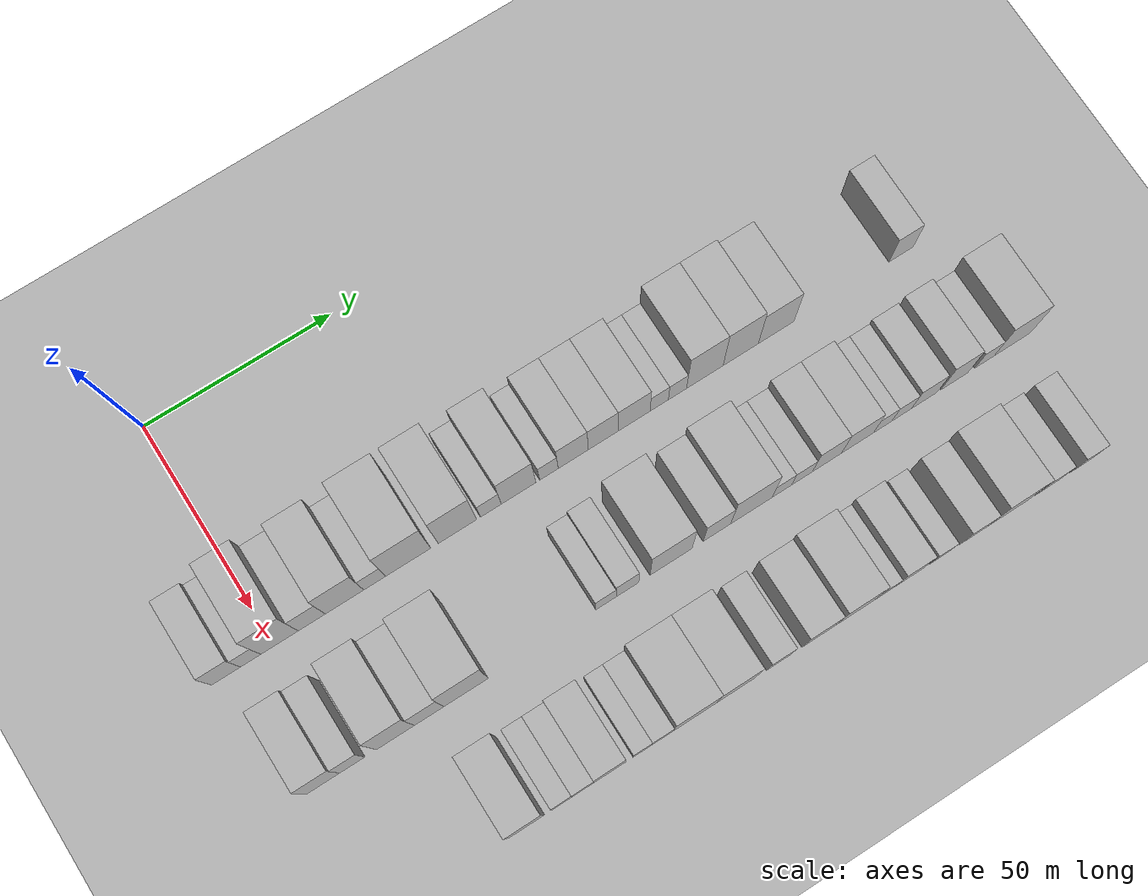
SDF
<sdf version="1.6">
 <world name="default">
  <include><name>ground_plane_1</name><uri>model://HANNAS_ground_plane</uri></include>
  <include>
   <name>ground_plane_2</name>
   <uri>model://HANNAS_ground_plane</uri>
   <pose>100 0 0  0 0 0</pose>
  </include>
  <model name="building_38">
   <static>1</static>
   <pose>50.0000 -12.3546 0 0.000000 0.000000 0.000000</pose>
   <link name="link">
    <pose>0 0 7.50 0 0 0</pose>
    <collision name="collision"><geometry><box><size>20.0000 7.4448 15.0000</size></box></geometry></collision>
    <visual name="visual">
     <cast_shadows>0</cast_shadows>
     <geometry><box><size>20.0000 7.4448 15.0000</size></box></geometry>
     <material>
      <script>
       <uri>model://HANNAS_wall/materials/scripts</uri>
       <uri>model://HANNAS_wall/materials/textures</uri>
       <name>vrc/HANNAS_wall</name>
      </script>
     </material>
    </visual>
   </link>
  </model>
  <model name="building_39">
   <static>1</static>
   <pose>50.0000 -6.0099 0 0.000000 0.000000 0.000000</pose>
   <link name="link">
    <pose>0 0 6.00 0 0 0</pose>
    <collision name="collision"><geometry><box><size>20.0000 5.2446 12.0000</size></box></geometry></collision>
    <visual name="visual">
     <cast_shadows>0</cast_shadows>
     <geometry><box><size>20.0000 5.2446 12.0000</size></box></geometry>
     <material>
      <script>
       <uri>model://HANNAS_wall/materials/scripts</uri>
       <uri>model://HANNAS_wall/materials/textures</uri>
       <name>vrc/HANNAS_wall</name>
      </script>
     </material>
    </visual>
   </link>
  </model>
  <model name="building_40">
   <static>1</static>
   <pose>50.0000 1.4643 0 0.000000 0.000000 0.000000</pose>
   <link name="link">
    <pose>0 0 12.00 0 0 0</pose>
    <collision name="collision"><geometry><box><size>20.0000 9.7036 24.0000</size></box></geometry></collision>
    <visual name="visual">
     <cast_shadows>0</cast_shadows>
     <geometry><box><size>20.0000 9.7036 24.0000</size></box></geometry>
     <material>
      <script>
       <uri>model://HANNAS_wall/materials/scripts</uri>
       <uri>model://HANNAS_wall/materials/textures</uri>
       <name>vrc/HANNAS_wall</name>
      </script>
     </material>
    </visual>
   </link>
  </model>
  <model name="building_41">
   <static>1</static>
   <pose>50.0000 9.8252 0 0.000000 0.000000 0.000000</pose>
   <link name="link">
    <pose>0 0 7.50 0 0 0</pose>
    <collision name="collision"><geometry><box><size>20.0000 7.0182 15.0000</size></box></geometry></collision>
    <visual name="visual">
     <cast_shadows>0</cast_shadows>
     <geometry><box><size>20.0000 7.0182 15.0000</size></box></geometry>
     <material>
      <script>
       <uri>model://HANNAS_wall/materials/scripts</uri>
       <uri>model://HANNAS_wall/materials/textures</uri>
       <name>vrc/HANNAS_wall</name>
      </script>
     </material>
    </visual>
   </link>
  </model>
  <model name="building_42">
   <static>1</static>
   <pose>50.0000 18.3706 0 0.000000 0.000000 0.000000</pose>
   <link name="link">
    <pose>0 0 10.50 0 0 0</pose>
    <collision name="collision"><geometry><box><size>20.0000 10.0727 21.0000</size></box></geometry></collision>
    <visual name="visual">
     <cast_shadows>0</cast_shadows>
     <geometry><box><size>20.0000 10.0727 21.0000</size></box></geometry>
     <material>
      <script>
       <uri>model://HANNAS_wall/materials/scripts</uri>
       <uri>model://HANNAS_wall/materials/textures</uri>
       <name>vrc/HANNAS_wall</name>
      </script>
     </material>
    </visual>
   </link>
  </model>
  <model name="building_43">
   <static>1</static>
   <pose>50.0000 26.2622 0 0.000000 0.000000 0.000000</pose>
   <link name="link">
    <pose>0 0 6.00 0 0 0</pose>
    <collision name="collision"><geometry><box><size>20.0000 5.7104 12.0000</size></box></geometry></collision>
    <visual name="visual">
     <cast_shadows>0</cast_shadows>
     <geometry><box><size>20.0000 5.7104 12.0000</size></box></geometry>
     <material>
      <script>
       <uri>model://HANNAS_wall/materials/scripts</uri>
       <uri>model://HANNAS_wall/materials/textures</uri>
       <name>vrc/HANNAS_wall</name>
      </script>
     </material>
    </visual>
   </link>
  </model>
  <model name="building_44">
   <static>1</static>
   <pose>50.0000 35.0794 0 0.000000 0.000000 0.000000</pose>
   <link name="link">
    <pose>0 0 12.00 0 0 0</pose>
    <collision name="collision"><geometry><box><size>20.0000 11.9240 24.0000</size></box></geometry></collision>
    <visual name="visual">
     <cast_shadows>0</cast_shadows>
     <geometry><box><size>20.0000 11.9240 24.0000</size></box></geometry>
     <material>
      <script>
       <uri>model://HANNAS_wall/materials/scripts</uri>
       <uri>model://HANNAS_wall/materials/textures</uri>
       <name>vrc/HANNAS_wall</name>
      </script>
     </material>
    </visual>
   </link>
  </model>
  <model name="building_45">
   <static>1</static>
   <pose>50.0000 48.1563 0 0.000000 0.000000 0.000000</pose>
   <link name="link">
    <pose>0 0 12.00 0 0 0</pose>
    <collision name="collision"><geometry><box><size>20.0000 10.2297 24.0000</size></box></geometry></collision>
    <visual name="visual">
     <cast_shadows>0</cast_shadows>
     <geometry><box><size>20.0000 10.2297 24.0000</size></box></geometry>
     <material>
      <script>
       <uri>model://HANNAS_wall/materials/scripts</uri>
       <uri>model://HANNAS_wall/materials/textures</uri>
       <name>vrc/HANNAS_wall</name>
      </script>
     </material>
    </visual>
   </link>
  </model>
  <model name="building_46">
   <static>1</static>
   <pose>50.0000 57.0596 0 0.000000 0.000000 0.000000</pose>
   <link name="link">
    <pose>0 0 6.00 0 0 0</pose>
    <collision name="collision"><geometry><box><size>20.0000 5.5768 12.0000</size></box></geometry></collision>
    <visual name="visual">
     <cast_shadows>0</cast_shadows>
     <geometry><box><size>20.0000 5.5768 12.0000</size></box></geometry>
     <material>
      <script>
       <uri>model://HANNAS_wall/materials/scripts</uri>
       <uri>model://HANNAS_wall/materials/textures</uri>
       <name>vrc/HANNAS_wall</name>
      </script>
     </material>
    </visual>
   </link>
  </model>
  <model name="building_47">
   <static>1</static>
   <pose>50.0000 64.5118 0 0.000000 0.000000 0.000000</pose>
   <link name="link">
    <pose>0 0 10.50 0 0 0</pose>
    <collision name="collision"><geometry><box><size>20.0000 9.3276 21.0000</size></box></geometry></collision>
    <visual name="visual">
     <cast_shadows>0</cast_shadows>
     <geometry><box><size>20.0000 9.3276 21.0000</size></box></geometry>
     <material>
      <script>
       <uri>model://HANNAS_wall/materials/scripts</uri>
       <uri>model://HANNAS_wall/materials/textures</uri>
       <name>vrc/HANNAS_wall</name>
      </script>
     </material>
    </visual>
   </link>
  </model>
  <model name="building_48">
   <static>1</static>
   <pose>50.0000 72.6799 0 0.000000 0.000000 0.000000</pose>
   <link name="link">
    <pose>0 0 6.00 0 0 0</pose>
    <collision name="collision"><geometry><box><size>20.0000 5.0088 12.0000</size></box></geometry></collision>
    <visual name="visual">
     <cast_shadows>0</cast_shadows>
     <geometry><box><size>20.0000 5.0088 12.0000</size></box></geometry>
     <material>
      <script>
       <uri>model://HANNAS_wall/materials/scripts</uri>
       <uri>model://HANNAS_wall/materials/textures</uri>
       <name>vrc/HANNAS_wall</name>
      </script>
     </material>
    </visual>
   </link>
  </model>
  <model name="building_49">
   <static>1</static>
   <pose>50.0000 79.2572 0 0.000000 0.000000 0.000000</pose>
   <link name="link">
    <pose>0 0 9.00 0 0 0</pose>
    <collision name="collision"><geometry><box><size>20.0000 8.1458 18.0000</size></box></geometry></collision>
    <visual name="visual">
     <cast_shadows>0</cast_shadows>
     <geometry><box><size>20.0000 8.1458 18.0000</size></box></geometry>
     <material>
      <script>
       <uri>model://HANNAS_wall/materials/scripts</uri>
       <uri>model://HANNAS_wall/materials/textures</uri>
       <name>vrc/HANNAS_wall</name>
      </script>
     </material>
    </visual>
   </link>
  </model>
  <model name="building_50">
   <static>1</static>
   <pose>50.0000 87.3845 0 0.000000 0.000000 0.000000</pose>
   <link name="link">
    <pose>0 0 9.00 0 0 0</pose>
    <collision name="collision"><geometry><box><size>20.0000 8.1087 18.0000</size></box></geometry></collision>
    <visual name="visual">
     <cast_shadows>0</cast_shadows>
     <geometry><box><size>20.0000 8.1087 18.0000</size></box></geometry>
     <material>
      <script>
       <uri>model://HANNAS_wall/materials/scripts</uri>
       <uri>model://HANNAS_wall/materials/textures</uri>
       <name>vrc/HANNAS_wall</name>
      </script>
     </material>
    </visual>
   </link>
  </model>
  <model name="building_51">
   <static>1</static>
   <pose>50.0000 95.8063 0 0.000000 0.000000 0.000000</pose>
   <link name="link">
    <pose>0 0 9.00 0 0 0</pose>
    <collision name="collision"><geometry><box><size>20.0000 8.7349 18.0000</size></box></geometry></collision>
    <visual name="visual">
     <cast_shadows>0</cast_shadows>
     <geometry><box><size>20.0000 8.7349 18.0000</size></box></geometry>
     <material>
      <script>
       <uri>model://HANNAS_wall/materials/scripts</uri>
       <uri>model://HANNAS_wall/materials/textures</uri>
       <name>vrc/HANNAS_wall</name>
      </script>
     </material>
    </visual>
   </link>
  </model>
  <model name="building_52">
   <static>1</static>
   <pose>50.0000 102.6797 0 0.000000 0.000000 0.000000</pose>
   <link name="link">
    <pose>0 0 6.00 0 0 0</pose>
    <collision name="collision"><geometry><box><size>20.0000 5.0120 12.0000</size></box></geometry></collision>
    <visual name="visual">
     <cast_shadows>0</cast_shadows>
     <geometry><box><size>20.0000 5.0120 12.0000</size></box></geometry>
     <material>
      <script>
       <uri>model://HANNAS_wall/materials/scripts</uri>
       <uri>model://HANNAS_wall/materials/textures</uri>
       <name>vrc/HANNAS_wall</name>
      </script>
     </material>
    </visual>
   </link>
  </model>
  <model name="building_53">
   <static>1</static>
   <pose>50.0000 107.6920 0 0.000000 0.000000 0.000000</pose>
   <link name="link">
    <pose>0 0 6.00 0 0 0</pose>
    <collision name="collision"><geometry><box><size>20.0000 5.0125 12.0000</size></box></geometry></collision>
    <visual name="visual">
     <cast_shadows>0</cast_shadows>
     <geometry><box><size>20.0000 5.0125 12.0000</size></box></geometry>
     <material>
      <script>
       <uri>model://HANNAS_wall/materials/scripts</uri>
       <uri>model://HANNAS_wall/materials/textures</uri>
       <name>vrc/HANNAS_wall</name>
      </script>
     </material>
    </visual>
   </link>
  </model>
  <model name="building_54">
   <static>1</static>
   <pose>50.0000 115.2535 0 0.000000 0.000000 0.000000</pose>
   <link name="link">
    <pose>0 0 12.00 0 0 0</pose>
    <collision name="collision"><geometry><box><size>20.0000 10.1106 24.0000</size></box></geometry></collision>
    <visual name="visual">
     <cast_shadows>0</cast_shadows>
     <geometry><box><size>20.0000 10.1106 24.0000</size></box></geometry>
     <material>
      <script>
       <uri>model://HANNAS_wall/materials/scripts</uri>
       <uri>model://HANNAS_wall/materials/textures</uri>
       <name>vrc/HANNAS_wall</name>
      </script>
     </material>
    </visual>
   </link>
  </model>
  <model name="building_55">
   <static>1</static>
   <pose>50.0000 125.1955 0 0.000000 0.000000 0.000000</pose>
   <link name="link">
    <pose>0 0 12.00 0 0 0</pose>
    <collision name="collision"><geometry><box><size>20.0000 9.7735 24.0000</size></box></geometry></collision>
    <visual name="visual">
     <cast_shadows>0</cast_shadows>
     <geometry><box><size>20.0000 9.7735 24.0000</size></box></geometry>
     <material>
      <script>
       <uri>model://HANNAS_wall/materials/scripts</uri>
       <uri>model://HANNAS_wall/materials/textures</uri>
       <name>vrc/HANNAS_wall</name>
      </script>
     </material>
    </visual>
   </link>
  </model>
  <model name="building_56">
   <static>1</static>
   <pose>50.0000 135.0868 0 0.000000 0.000000 0.000000</pose>
   <link name="link">
    <pose>0 0 10.50 0 0 0</pose>
    <collision name="collision"><geometry><box><size>20.0000 10.0090 21.0000</size></box></geometry></collision>
    <visual name="visual">
     <cast_shadows>0</cast_shadows>
     <geometry><box><size>20.0000 10.0090 21.0000</size></box></geometry>
     <material>
      <script>
       <uri>model://HANNAS_wall/materials/scripts</uri>
       <uri>model://HANNAS_wall/materials/textures</uri>
       <name>vrc/HANNAS_wall</name>
      </script>
     </material>
    </visual>
   </link>
  </model>
  <model name="building_57">
   <static>1</static>
   <pose>50.0000 170.4384 0 0.000000 0.000000 0.000000</pose>
   <link name="link">
    <pose>0 0 7.50 0 0 0</pose>
    <collision name="collision"><geometry><box><size>20.0000 6.8981 15.0000</size></box></geometry></collision>
    <visual name="visual">
     <cast_shadows>0</cast_shadows>
     <geometry><box><size>20.0000 6.8981 15.0000</size></box></geometry>
     <material>
      <script>
       <uri>model://HANNAS_wall/materials/scripts</uri>
       <uri>model://HANNAS_wall/materials/textures</uri>
       <name>vrc/HANNAS_wall</name>
      </script>
     </material>
    </visual>
   </link>
  </model>
  <model name="building_116">
   <static>1</static>
   <pose>82.0000 -6.1016 0 0.000000 0.000000 0.000000</pose>
   <link name="link">
    <pose>0 0 9.00 0 0 0</pose>
    <collision name="collision"><geometry><box><size>20.0000 8.5168 18.0000</size></box></geometry></collision>
    <visual name="visual">
     <cast_shadows>0</cast_shadows>
     <geometry><box><size>20.0000 8.5168 18.0000</size></box></geometry>
     <material>
      <script>
       <uri>model://HANNAS_wall/materials/scripts</uri>
       <uri>model://HANNAS_wall/materials/textures</uri>
       <name>vrc/HANNAS_wall</name>
      </script>
     </material>
    </visual>
   </link>
  </model>
  <model name="building_117">
   <static>1</static>
   <pose>82.0000 1.3639 0 0.000000 0.000000 0.000000</pose>
   <link name="link">
    <pose>0 0 7.50 0 0 0</pose>
    <collision name="collision"><geometry><box><size>20.0000 6.4143 15.0000</size></box></geometry></collision>
    <visual name="visual">
     <cast_shadows>0</cast_shadows>
     <geometry><box><size>20.0000 6.4143 15.0000</size></box></geometry>
     <material>
      <script>
       <uri>model://HANNAS_wall/materials/scripts</uri>
       <uri>model://HANNAS_wall/materials/textures</uri>
       <name>vrc/HANNAS_wall</name>
      </script>
     </material>
    </visual>
   </link>
  </model>
  <model name="building_118">
   <static>1</static>
   <pose>82.0000 12.4563 0 0.000000 0.000000 0.000000</pose>
   <link name="link">
    <pose>0 0 12.00 0 0 0</pose>
    <collision name="collision"><geometry><box><size>20.0000 9.7705 24.0000</size></box></geometry></collision>
    <visual name="visual">
     <cast_shadows>0</cast_shadows>
     <geometry><box><size>20.0000 9.7705 24.0000</size></box></geometry>
     <material>
      <script>
       <uri>model://HANNAS_wall/materials/scripts</uri>
       <uri>model://HANNAS_wall/materials/textures</uri>
       <name>vrc/HANNAS_wall</name>
      </script>
     </material>
    </visual>
   </link>
  </model>
  <model name="building_119">
   <static>1</static>
   <pose>82.0000 21.1484 0 0.000000 0.000000 0.000000</pose>
   <link name="link">
    <pose>0 0 9.00 0 0 0</pose>
    <collision name="collision"><geometry><box><size>20.0000 7.6135 18.0000</size></box></geometry></collision>
    <visual name="visual">
     <cast_shadows>0</cast_shadows>
     <geometry><box><size>20.0000 7.6135 18.0000</size></box></geometry>
     <material>
      <script>
       <uri>model://HANNAS_wall/materials/scripts</uri>
       <uri>model://HANNAS_wall/materials/textures</uri>
       <name>vrc/HANNAS_wall</name>
      </script>
     </material>
    </visual>
   </link>
  </model>
  <model name="building_120">
   <static>1</static>
   <pose>82.0000 30.7555 0 0.000000 0.000000 0.000000</pose>
   <link name="link">
    <pose>0 0 12.00 0 0 0</pose>
    <collision name="collision"><geometry><box><size>20.0000 11.6007 24.0000</size></box></geometry></collision>
    <visual name="visual">
     <cast_shadows>0</cast_shadows>
     <geometry><box><size>20.0000 11.6007 24.0000</size></box></geometry>
     <material>
      <script>
       <uri>model://HANNAS_wall/materials/scripts</uri>
       <uri>model://HANNAS_wall/materials/textures</uri>
       <name>vrc/HANNAS_wall</name>
      </script>
     </material>
    </visual>
   </link>
  </model>
  <model name="building_121">
   <static>1</static>
   <pose>82.0000 67.6866 0 0.000000 0.000000 0.000000</pose>
   <link name="link">
    <pose>0 0 6.00 0 0 0</pose>
    <collision name="collision"><geometry><box><size>20.0000 5.4205 12.0000</size></box></geometry></collision>
    <visual name="visual">
     <cast_shadows>0</cast_shadows>
     <geometry><box><size>20.0000 5.4205 12.0000</size></box></geometry>
     <material>
      <script>
       <uri>model://HANNAS_wall/materials/scripts</uri>
       <uri>model://HANNAS_wall/materials/textures</uri>
       <name>vrc/HANNAS_wall</name>
      </script>
     </material>
    </visual>
   </link>
  </model>
  <model name="building_122">
   <static>1</static>
   <pose>82.0000 73.4243 0 0.000000 0.000000 0.000000</pose>
   <link name="link">
    <pose>0 0 7.50 0 0 0</pose>
    <collision name="collision"><geometry><box><size>20.0000 6.0547 15.0000</size></box></geometry></collision>
    <visual name="visual">
     <cast_shadows>0</cast_shadows>
     <geometry><box><size>20.0000 6.0547 15.0000</size></box></geometry>
     <material>
      <script>
       <uri>model://HANNAS_wall/materials/scripts</uri>
       <uri>model://HANNAS_wall/materials/textures</uri>
       <name>vrc/HANNAS_wall</name>
      </script>
     </material>
    </visual>
   </link>
  </model>
  <model name="building_123">
   <static>1</static>
   <pose>82.0000 85.1158 0 0.000000 0.000000 0.000000</pose>
   <link name="link">
    <pose>0 0 12.00 0 0 0</pose>
    <collision name="collision"><geometry><box><size>20.0000 11.3284 24.0000</size></box></geometry></collision>
    <visual name="visual">
     <cast_shadows>0</cast_shadows>
     <geometry><box><size>20.0000 11.3284 24.0000</size></box></geometry>
     <material>
      <script>
       <uri>model://HANNAS_wall/materials/scripts</uri>
       <uri>model://HANNAS_wall/materials/textures</uri>
       <name>vrc/HANNAS_wall</name>
      </script>
     </material>
    </visual>
   </link>
  </model>
  <model name="building_124">
   <static>1</static>
   <pose>82.0000 97.5061 0 0.000000 0.000000 0.000000</pose>
   <link name="link">
    <pose>0 0 9.00 0 0 0</pose>
    <collision name="collision"><geometry><box><size>20.0000 7.4522 18.0000</size></box></geometry></collision>
    <visual name="visual">
     <cast_shadows>0</cast_shadows>
     <geometry><box><size>20.0000 7.4522 18.0000</size></box></geometry>
     <material>
      <script>
       <uri>model://HANNAS_wall/materials/scripts</uri>
       <uri>model://HANNAS_wall/materials/textures</uri>
       <name>vrc/HANNAS_wall</name>
      </script>
     </material>
    </visual>
   </link>
  </model>
  <model name="building_125">
   <static>1</static>
   <pose>82.0000 106.8873 0 0.000000 0.000000 0.000000</pose>
   <link name="link">
    <pose>0 0 12.00 0 0 0</pose>
    <collision name="collision"><geometry><box><size>20.0000 11.3100 24.0000</size></box></geometry></collision>
    <visual name="visual">
     <cast_shadows>0</cast_shadows>
     <geometry><box><size>20.0000 11.3100 24.0000</size></box></geometry>
     <material>
      <script>
       <uri>model://HANNAS_wall/materials/scripts</uri>
       <uri>model://HANNAS_wall/materials/textures</uri>
       <name>vrc/HANNAS_wall</name>
      </script>
     </material>
    </visual>
   </link>
  </model>
  <model name="building_126">
   <static>1</static>
   <pose>82.0000 115.2174 0 0.000000 0.000000 0.000000</pose>
   <link name="link">
    <pose>0 0 6.00 0 0 0</pose>
    <collision name="collision"><geometry><box><size>20.0000 5.3503 12.0000</size></box></geometry></collision>
    <visual name="visual">
     <cast_shadows>0</cast_shadows>
     <geometry><box><size>20.0000 5.3503 12.0000</size></box></geometry>
     <material>
      <script>
       <uri>model://HANNAS_wall/materials/scripts</uri>
       <uri>model://HANNAS_wall/materials/textures</uri>
       <name>vrc/HANNAS_wall</name>
      </script>
     </material>
    </visual>
   </link>
  </model>
  <model name="building_127">
   <static>1</static>
   <pose>82.0000 120.7360 0 0.000000 0.000000 0.000000</pose>
   <link name="link">
    <pose>0 0 6.00 0 0 0</pose>
    <collision name="collision"><geometry><box><size>20.0000 5.6870 12.0000</size></box></geometry></collision>
    <visual name="visual">
     <cast_shadows>0</cast_shadows>
     <geometry><box><size>20.0000 5.6870 12.0000</size></box></geometry>
     <material>
      <script>
       <uri>model://HANNAS_wall/materials/scripts</uri>
       <uri>model://HANNAS_wall/materials/textures</uri>
       <name>vrc/HANNAS_wall</name>
      </script>
     </material>
    </visual>
   </link>
  </model>
  <model name="building_128">
   <static>1</static>
   <pose>82.0000 127.6062 0 0.000000 0.000000 0.000000</pose>
   <link name="link">
    <pose>0 0 9.00 0 0 0</pose>
    <collision name="collision"><geometry><box><size>20.0000 8.0534 18.0000</size></box></geometry></collision>
    <visual name="visual">
     <cast_shadows>0</cast_shadows>
     <geometry><box><size>20.0000 8.0534 18.0000</size></box></geometry>
     <material>
      <script>
       <uri>model://HANNAS_wall/materials/scripts</uri>
       <uri>model://HANNAS_wall/materials/textures</uri>
       <name>vrc/HANNAS_wall</name>
      </script>
     </material>
    </visual>
   </link>
  </model>
  <model name="building_129">
   <static>1</static>
   <pose>82.0000 136.0837 0 0.000000 0.000000 0.000000</pose>
   <link name="link">
    <pose>0 0 9.00 0 0 0</pose>
    <collision name="collision"><geometry><box><size>20.0000 8.9015 18.0000</size></box></geometry></collision>
    <visual name="visual">
     <cast_shadows>0</cast_shadows>
     <geometry><box><size>20.0000 8.9015 18.0000</size></box></geometry>
     <material>
      <script>
       <uri>model://HANNAS_wall/materials/scripts</uri>
       <uri>model://HANNAS_wall/materials/textures</uri>
       <name>vrc/HANNAS_wall</name>
      </script>
     </material>
    </visual>
   </link>
  </model>
  <model name="building_130">
   <static>1</static>
   <pose>82.0000 143.0996 0 0.000000 0.000000 0.000000</pose>
   <link name="link">
    <pose>0 0 6.00 0 0 0</pose>
    <collision name="collision"><geometry><box><size>20.0000 5.1302 12.0000</size></box></geometry></collision>
    <visual name="visual">
     <cast_shadows>0</cast_shadows>
     <geometry><box><size>20.0000 5.1302 12.0000</size></box></geometry>
     <material>
      <script>
       <uri>model://HANNAS_wall/materials/scripts</uri>
       <uri>model://HANNAS_wall/materials/textures</uri>
       <name>vrc/HANNAS_wall</name>
      </script>
     </material>
    </visual>
   </link>
  </model>
  <model name="building_131">
   <static>1</static>
   <pose>82.0000 148.4214 0 0.000000 0.000000 0.000000</pose>
   <link name="link">
    <pose>0 0 6.00 0 0 0</pose>
    <collision name="collision"><geometry><box><size>20.0000 5.5135 12.0000</size></box></geometry></collision>
    <visual name="visual">
     <cast_shadows>0</cast_shadows>
     <geometry><box><size>20.0000 5.5135 12.0000</size></box></geometry>
     <material>
      <script>
       <uri>model://HANNAS_wall/materials/scripts</uri>
       <uri>model://HANNAS_wall/materials/textures</uri>
       <name>vrc/HANNAS_wall</name>
      </script>
     </material>
    </visual>
   </link>
  </model>
  <model name="building_132">
   <static>1</static>
   <pose>82.0000 154.8139 0 0.000000 0.000000 0.000000</pose>
   <link name="link">
    <pose>0 0 7.50 0 0 0</pose>
    <collision name="collision"><geometry><box><size>20.0000 7.2716 15.0000</size></box></geometry></collision>
    <visual name="visual">
     <cast_shadows>0</cast_shadows>
     <geometry><box><size>20.0000 7.2716 15.0000</size></box></geometry>
     <material>
      <script>
       <uri>model://HANNAS_wall/materials/scripts</uri>
       <uri>model://HANNAS_wall/materials/textures</uri>
       <name>vrc/HANNAS_wall</name>
      </script>
     </material>
    </visual>
   </link>
  </model>
  <model name="building_133">
   <static>1</static>
   <pose>82.0000 163.2743 0 0.000000 0.000000 0.000000</pose>
   <link name="link">
    <pose>0 0 9.00 0 0 0</pose>
    <collision name="collision"><geometry><box><size>20.0000 7.6492 18.0000</size></box></geometry></collision>
    <visual name="visual">
     <cast_shadows>0</cast_shadows>
     <geometry><box><size>20.0000 7.6492 18.0000</size></box></geometry>
     <material>
      <script>
       <uri>model://HANNAS_wall/materials/scripts</uri>
       <uri>model://HANNAS_wall/materials/textures</uri>
       <name>vrc/HANNAS_wall</name>
      </script>
     </material>
    </visual>
   </link>
  </model>
  <model name="building_134">
   <static>1</static>
   <pose>82.0000 171.7755 0 0.000000 0.000000 0.000000</pose>
   <link name="link">
    <pose>0 0 6.00 0 0 0</pose>
    <collision name="collision"><geometry><box><size>20.0000 5.3531 12.0000</size></box></geometry></collision>
    <visual name="visual">
     <cast_shadows>0</cast_shadows>
     <geometry><box><size>20.0000 5.3531 12.0000</size></box></geometry>
     <material>
      <script>
       <uri>model://HANNAS_wall/materials/scripts</uri>
       <uri>model://HANNAS_wall/materials/textures</uri>
       <name>vrc/HANNAS_wall</name>
      </script>
     </material>
    </visual>
   </link>
  </model>
  <model name="building_135">
   <static>1</static>
   <pose>82.0000 179.6747 0 0.000000 0.000000 0.000000</pose>
   <link name="link">
    <pose>0 0 10.50 0 0 0</pose>
    <collision name="collision"><geometry><box><size>20.0000 10.4454 21.0000</size></box></geometry></collision>
    <visual name="visual">
     <cast_shadows>0</cast_shadows>
     <geometry><box><size>20.0000 10.4454 21.0000</size></box></geometry>
     <material>
      <script>
       <uri>model://HANNAS_wall/materials/scripts</uri>
       <uri>model://HANNAS_wall/materials/textures</uri>
       <name>vrc/HANNAS_wall</name>
      </script>
     </material>
    </visual>
   </link>
  </model>
  <model name="building_196">
   <static>1</static>
   <pose>114.0000 26.6985 0 0.000000 0.000000 0.000000</pose>
   <link name="link">
    <pose>0 0 10.50 0 0 0</pose>
    <collision name="collision"><geometry><box><size>20.0000 9.1221 21.0000</size></box></geometry></collision>
    <visual name="visual">
     <cast_shadows>0</cast_shadows>
     <geometry><box><size>20.0000 9.1221 21.0000</size></box></geometry>
     <material>
      <script>
       <uri>model://HANNAS_wall/materials/scripts</uri>
       <uri>model://HANNAS_wall/materials/textures</uri>
       <name>vrc/HANNAS_wall</name>
      </script>
     </material>
    </visual>
   </link>
  </model>
  <model name="building_197">
   <static>1</static>
   <pose>114.0000 35.8863 0 0.000000 0.000000 0.000000</pose>
   <link name="link">
    <pose>0 0 6.00 0 0 0</pose>
    <collision name="collision"><geometry><box><size>20.0000 5.2536 12.0000</size></box></geometry></collision>
    <visual name="visual">
     <cast_shadows>0</cast_shadows>
     <geometry><box><size>20.0000 5.2536 12.0000</size></box></geometry>
     <material>
      <script>
       <uri>model://HANNAS_wall/materials/scripts</uri>
       <uri>model://HANNAS_wall/materials/textures</uri>
       <name>vrc/HANNAS_wall</name>
      </script>
     </material>
    </visual>
   </link>
  </model>
  <model name="building_198">
   <static>1</static>
   <pose>114.0000 41.3428 0 0.000000 0.000000 0.000000</pose>
   <link name="link">
    <pose>0 0 6.00 0 0 0</pose>
    <collision name="collision"><geometry><box><size>20.0000 5.6595 12.0000</size></box></geometry></collision>
    <visual name="visual">
     <cast_shadows>0</cast_shadows>
     <geometry><box><size>20.0000 5.6595 12.0000</size></box></geometry>
     <material>
      <script>
       <uri>model://HANNAS_wall/materials/scripts</uri>
       <uri>model://HANNAS_wall/materials/textures</uri>
       <name>vrc/HANNAS_wall</name>
      </script>
     </material>
    </visual>
   </link>
  </model>
  <model name="building_199">
   <static>1</static>
   <pose>114.0000 48.2407 0 0.000000 0.000000 0.000000</pose>
   <link name="link">
    <pose>0 0 9.00 0 0 0</pose>
    <collision name="collision"><geometry><box><size>20.0000 8.1361 18.0000</size></box></geometry></collision>
    <visual name="visual">
     <cast_shadows>0</cast_shadows>
     <geometry><box><size>20.0000 8.1361 18.0000</size></box></geometry>
     <material>
      <script>
       <uri>model://HANNAS_wall/materials/scripts</uri>
       <uri>model://HANNAS_wall/materials/textures</uri>
       <name>vrc/HANNAS_wall</name>
      </script>
     </material>
    </visual>
   </link>
  </model>
  <model name="building_200">
   <static>1</static>
   <pose>114.0000 56.7435 0 0.000000 0.000000 0.000000</pose>
   <link name="link">
    <pose>0 0 6.00 0 0 0</pose>
    <collision name="collision"><geometry><box><size>20.0000 4.8694 12.0000</size></box></geometry></collision>
    <visual name="visual">
     <cast_shadows>0</cast_shadows>
     <geometry><box><size>20.0000 4.8694 12.0000</size></box></geometry>
     <material>
      <script>
       <uri>model://HANNAS_wall/materials/scripts</uri>
       <uri>model://HANNAS_wall/materials/textures</uri>
       <name>vrc/HANNAS_wall</name>
      </script>
     </material>
    </visual>
   </link>
  </model>
  <model name="building_201">
   <static>1</static>
   <pose>114.0000 61.9903 0 0.000000 0.000000 0.000000</pose>
   <link name="link">
    <pose>0 0 6.00 0 0 0</pose>
    <collision name="collision"><geometry><box><size>20.0000 5.6242 12.0000</size></box></geometry></collision>
    <visual name="visual">
     <cast_shadows>0</cast_shadows>
     <geometry><box><size>20.0000 5.6242 12.0000</size></box></geometry>
     <material>
      <script>
       <uri>model://HANNAS_wall/materials/scripts</uri>
       <uri>model://HANNAS_wall/materials/textures</uri>
       <name>vrc/HANNAS_wall</name>
      </script>
     </material>
    </visual>
   </link>
  </model>
  <model name="building_202">
   <static>1</static>
   <pose>114.0000 70.6345 0 0.000000 0.000000 0.000000</pose>
   <link name="link">
    <pose>0 0 12.00 0 0 0</pose>
    <collision name="collision"><geometry><box><size>20.0000 11.6643 24.0000</size></box></geometry></collision>
    <visual name="visual">
     <cast_shadows>0</cast_shadows>
     <geometry><box><size>20.0000 11.6643 24.0000</size></box></geometry>
     <material>
      <script>
       <uri>model://HANNAS_wall/materials/scripts</uri>
       <uri>model://HANNAS_wall/materials/textures</uri>
       <name>vrc/HANNAS_wall</name>
      </script>
     </material>
    </visual>
   </link>
  </model>
  <model name="building_203">
   <static>1</static>
   <pose>114.0000 81.5839 0 0.000000 0.000000 0.000000</pose>
   <link name="link">
    <pose>0 0 12.00 0 0 0</pose>
    <collision name="collision"><geometry><box><size>20.0000 10.2345 24.0000</size></box></geometry></collision>
    <visual name="visual">
     <cast_shadows>0</cast_shadows>
     <geometry><box><size>20.0000 10.2345 24.0000</size></box></geometry>
     <material>
      <script>
       <uri>model://HANNAS_wall/materials/scripts</uri>
       <uri>model://HANNAS_wall/materials/textures</uri>
       <name>vrc/HANNAS_wall</name>
      </script>
     </material>
    </visual>
   </link>
  </model>
  <model name="building_204">
   <static>1</static>
   <pose>114.0000 92.9482 0 0.000000 0.000000 0.000000</pose>
   <link name="link">
    <pose>0 0 7.50 0 0 0</pose>
    <collision name="collision"><geometry><box><size>20.0000 6.4940 15.0000</size></box></geometry></collision>
    <visual name="visual">
     <cast_shadows>0</cast_shadows>
     <geometry><box><size>20.0000 6.4940 15.0000</size></box></geometry>
     <material>
      <script>
       <uri>model://HANNAS_wall/materials/scripts</uri>
       <uri>model://HANNAS_wall/materials/textures</uri>
       <name>vrc/HANNAS_wall</name>
      </script>
     </material>
    </visual>
   </link>
  </model>
  <model name="building_205">
   <static>1</static>
   <pose>114.0000 103.6363 0 0.000000 0.000000 0.000000</pose>
   <link name="link">
    <pose>0 0 9.00 0 0 0</pose>
    <collision name="collision"><geometry><box><size>20.0000 8.8823 18.0000</size></box></geometry></collision>
    <visual name="visual">
     <cast_shadows>0</cast_shadows>
     <geometry><box><size>20.0000 8.8823 18.0000</size></box></geometry>
     <material>
      <script>
       <uri>model://HANNAS_wall/materials/scripts</uri>
       <uri>model://HANNAS_wall/materials/textures</uri>
       <name>vrc/HANNAS_wall</name>
      </script>
     </material>
    </visual>
   </link>
  </model>
  <model name="building_206">
   <static>1</static>
   <pose>114.0000 113.2676 0 0.000000 0.000000 0.000000</pose>
   <link name="link">
    <pose>0 0 12.00 0 0 0</pose>
    <collision name="collision"><geometry><box><size>20.0000 10.3803 24.0000</size></box></geometry></collision>
    <visual name="visual">
     <cast_shadows>0</cast_shadows>
     <geometry><box><size>20.0000 10.3803 24.0000</size></box></geometry>
     <material>
      <script>
       <uri>model://HANNAS_wall/materials/scripts</uri>
       <uri>model://HANNAS_wall/materials/textures</uri>
       <name>vrc/HANNAS_wall</name>
      </script>
     </material>
    </visual>
   </link>
  </model>
  <model name="building_207">
   <static>1</static>
   <pose>114.0000 121.3984 0 0.000000 0.000000 0.000000</pose>
   <link name="link">
    <pose>0 0 6.00 0 0 0</pose>
    <collision name="collision"><geometry><box><size>20.0000 5.8814 12.0000</size></box></geometry></collision>
    <visual name="visual">
     <cast_shadows>0</cast_shadows>
     <geometry><box><size>20.0000 5.8814 12.0000</size></box></geometry>
     <material>
      <script>
       <uri>model://HANNAS_wall/materials/scripts</uri>
       <uri>model://HANNAS_wall/materials/textures</uri>
       <name>vrc/HANNAS_wall</name>
      </script>
     </material>
    </visual>
   </link>
  </model>
  <model name="building_208">
   <static>1</static>
   <pose>114.0000 128.1922 0 0.000000 0.000000 0.000000</pose>
   <link name="link">
    <pose>0 0 9.00 0 0 0</pose>
    <collision name="collision"><geometry><box><size>20.0000 7.7062 18.0000</size></box></geometry></collision>
    <visual name="visual">
     <cast_shadows>0</cast_shadows>
     <geometry><box><size>20.0000 7.7062 18.0000</size></box></geometry>
     <material>
      <script>
       <uri>model://HANNAS_wall/materials/scripts</uri>
       <uri>model://HANNAS_wall/materials/textures</uri>
       <name>vrc/HANNAS_wall</name>
      </script>
     </material>
    </visual>
   </link>
  </model>
  <model name="building_209">
   <static>1</static>
   <pose>114.0000 136.6680 0 0.000000 0.000000 0.000000</pose>
   <link name="link">
    <pose>0 0 6.00 0 0 0</pose>
    <collision name="collision"><geometry><box><size>20.0000 5.2455 12.0000</size></box></geometry></collision>
    <visual name="visual">
     <cast_shadows>0</cast_shadows>
     <geometry><box><size>20.0000 5.2455 12.0000</size></box></geometry>
     <material>
      <script>
       <uri>model://HANNAS_wall/materials/scripts</uri>
       <uri>model://HANNAS_wall/materials/textures</uri>
       <name>vrc/HANNAS_wall</name>
      </script>
     </material>
    </visual>
   </link>
  </model>
  <model name="building_210">
   <static>1</static>
   <pose>114.0000 146.0125 0 0.000000 0.000000 0.000000</pose>
   <link name="link">
    <pose>0 0 7.50 0 0 0</pose>
    <collision name="collision"><geometry><box><size>20.0000 7.4434 15.0000</size></box></geometry></collision>
    <visual name="visual">
     <cast_shadows>0</cast_shadows>
     <geometry><box><size>20.0000 7.4434 15.0000</size></box></geometry>
     <material>
      <script>
       <uri>model://HANNAS_wall/materials/scripts</uri>
       <uri>model://HANNAS_wall/materials/textures</uri>
       <name>vrc/HANNAS_wall</name>
      </script>
     </material>
    </visual>
   </link>
  </model>
  <model name="building_211">
   <static>1</static>
   <pose>114.0000 155.3903 0 0.000000 0.000000 0.000000</pose>
   <link name="link">
    <pose>0 0 12.00 0 0 0</pose>
    <collision name="collision"><geometry><box><size>20.0000 11.3121 24.0000</size></box></geometry></collision>
    <visual name="visual">
     <cast_shadows>0</cast_shadows>
     <geometry><box><size>20.0000 11.3121 24.0000</size></box></geometry>
     <material>
      <script>
       <uri>model://HANNAS_wall/materials/scripts</uri>
       <uri>model://HANNAS_wall/materials/textures</uri>
       <name>vrc/HANNAS_wall</name>
      </script>
     </material>
    </visual>
   </link>
  </model>
  <model name="building_212">
   <static>1</static>
   <pose>114.0000 166.5104 0 0.000000 0.000000 0.000000</pose>
   <link name="link">
    <pose>0 0 7.50 0 0 0</pose>
    <collision name="collision"><geometry><box><size>20.0000 6.9281 15.0000</size></box></geometry></collision>
    <visual name="visual">
     <cast_shadows>0</cast_shadows>
     <geometry><box><size>20.0000 6.9281 15.0000</size></box></geometry>
     <material>
      <script>
       <uri>model://HANNAS_wall/materials/scripts</uri>
       <uri>model://HANNAS_wall/materials/textures</uri>
       <name>vrc/HANNAS_wall</name>
      </script>
     </material>
    </visual>
   </link>
  </model>
  <model name="building_213">
   <static>1</static>
   <pose>114.0000 176.0063 0 0.000000 0.000000 0.000000</pose>
   <link name="link">
    <pose>0 0 7.50 0 0 0</pose>
    <collision name="collision"><geometry><box><size>20.0000 6.0639 15.0000</size></box></geometry></collision>
    <visual name="visual">
     <cast_shadows>0</cast_shadows>
     <geometry><box><size>20.0000 6.0639 15.0000</size></box></geometry>
     <material>
      <script>
       <uri>model://HANNAS_wall/materials/scripts</uri>
       <uri>model://HANNAS_wall/materials/textures</uri>
       <name>vrc/HANNAS_wall</name>
      </script>
     </material>
    </visual>
   </link>
  </model>
 </world>
</sdf>
